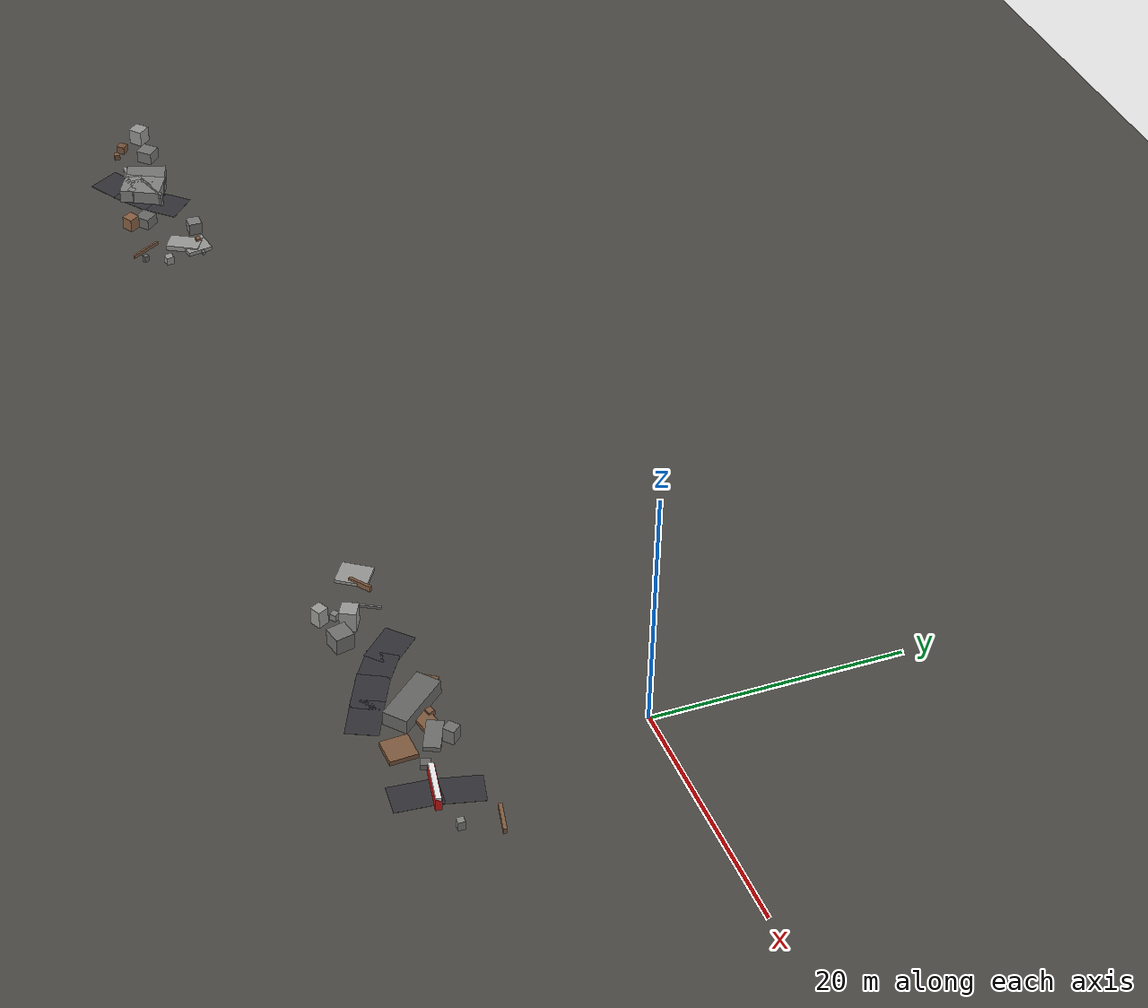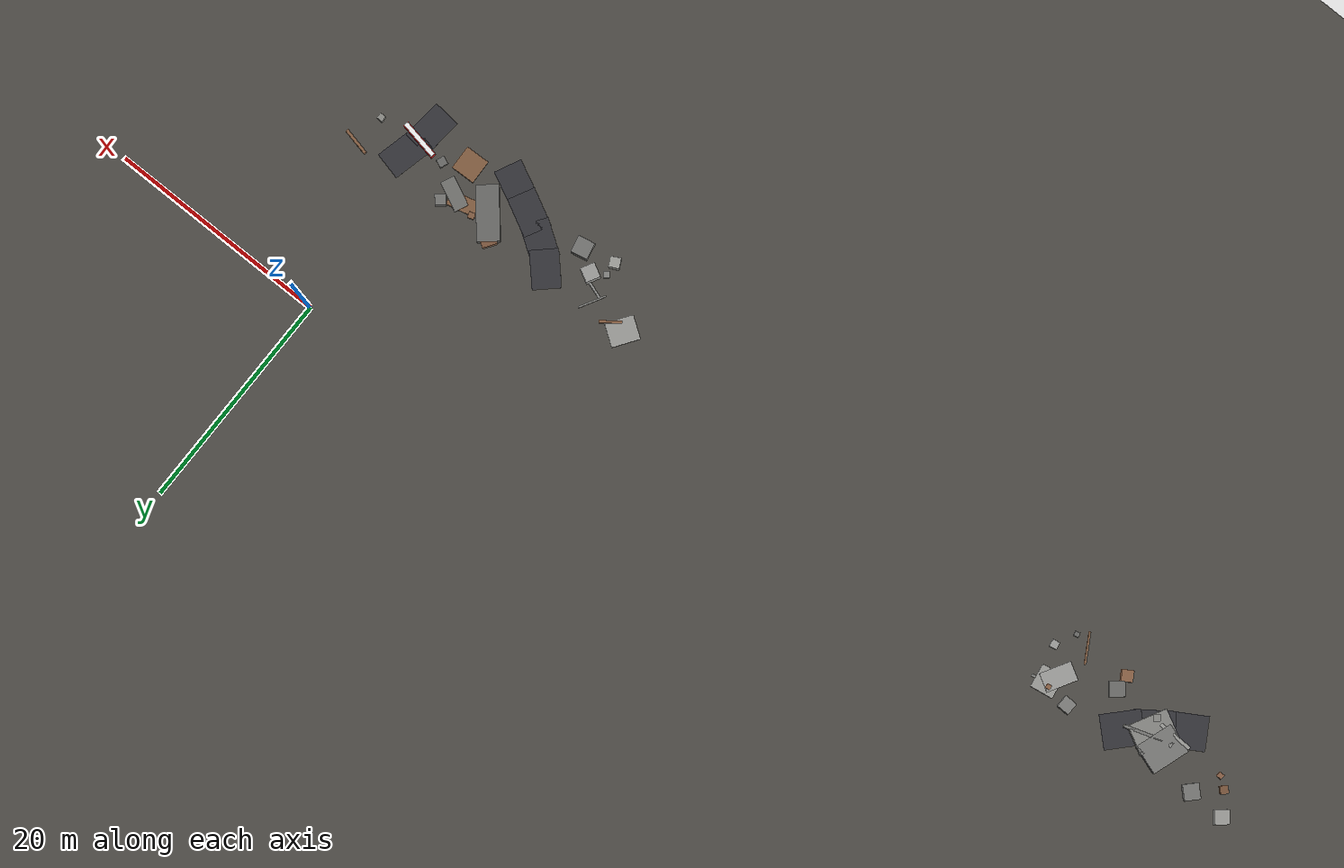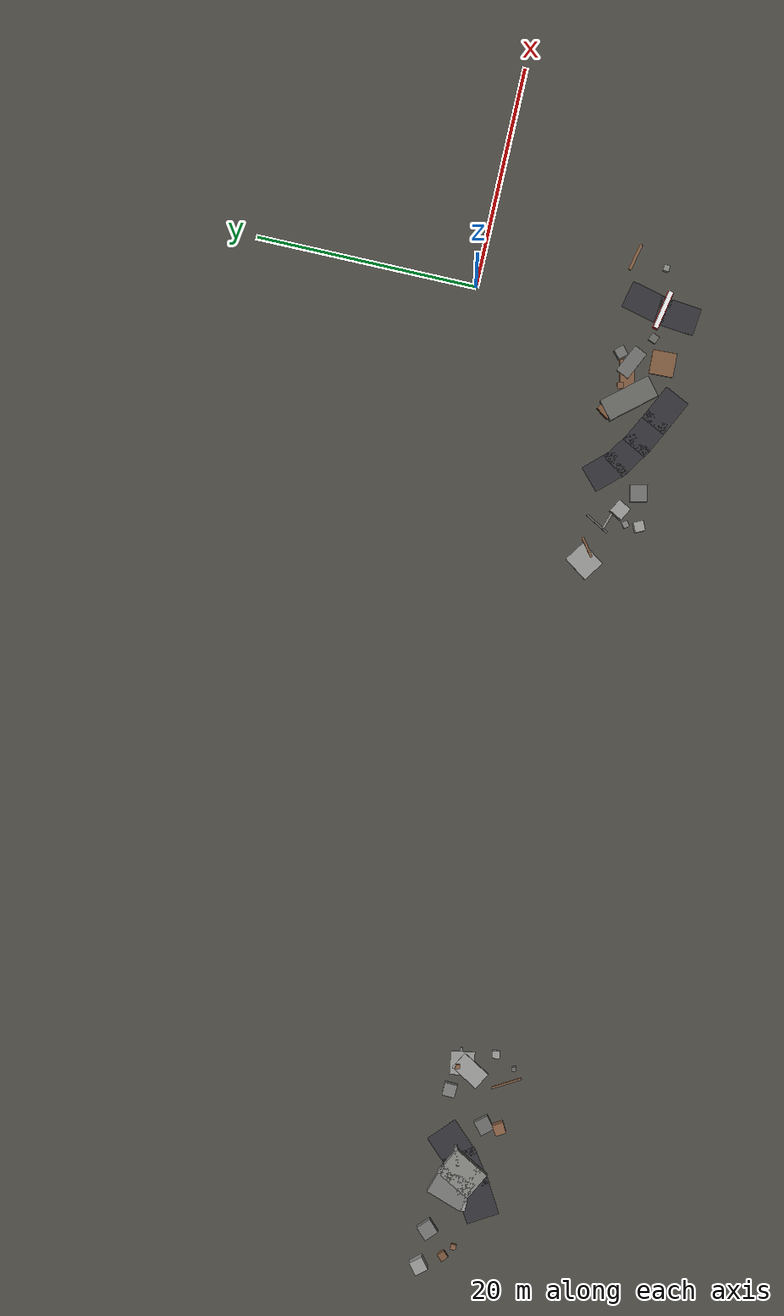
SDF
<sdf version="1.6">
 <world name="navitas_arena">
  <model name="ground_plane">
   <static>true</static>
   <link name="link">
    <collision name="collision">
     <geometry><plane><normal>0 0 1</normal><size>400 400</size></plane></geometry>
     <surface><friction><ode><mu>0.800</mu><mu2>0.800</mu2></ode></friction></surface>
    </collision>
    <visual name="visual">
     <cast_shadows>false</cast_shadows>
     <geometry><plane><normal>0 0 1</normal><size>400 400</size></plane></geometry>
     <material><ambient>0.300 0.290 0.270 1</ambient><diffuse>0.300 0.290 0.270 1</diffuse></material>
    </visual>
   </link>
  </model>
  <model name="road_kolay_3_3">
   <static>true</static>
   <pose>-79.477 -18.153 0.040 0 0 0.534</pose>
   <link name="link">
    <collision name="col"><geometry><box><size>3.588 3.000 0.020</size></box></geometry></collision>
    <visual name="vis">
     <geometry><box><size>3.588 3.000 0.020</size></box></geometry>
     <material><ambient>0.20 0.20 0.22 1</ambient><diffuse>0.20 0.20 0.22 1</diffuse></material>
    </visual>
   </link>
  </model>
  <model name="road_kolay_3_4">
   <static>true</static>
   <pose>-77.232 -16.688 0.040 0 0 0.623</pose>
   <link name="link">
    <collision name="col"><geometry><box><size>3.579 3.000 0.020</size></box></geometry></collision>
    <visual name="vis">
     <geometry><box><size>3.579 3.000 0.020</size></box></geometry>
     <material><ambient>0.20 0.20 0.22 1</ambient><diffuse>0.20 0.20 0.22 1</diffuse></material>
    </visual>
   </link>
  </model>
  <model name="road_kolay_3_5">
   <static>true</static>
   <pose>-75.233 -14.942 0.040 0 0 0.813</pose>
   <link name="link">
    <collision name="col"><geometry><box><size>3.554 3.000 0.020</size></box></geometry></collision>
    <visual name="vis">
     <geometry><box><size>3.554 3.000 0.020</size></box></geometry>
     <material><ambient>0.20 0.20 0.22 1</ambient><diffuse>0.20 0.20 0.22 1</diffuse></material>
    </visual>
   </link>
  </model>
  <model name="blk_kolay_3_0_0">
   <static>true</static>
   <pose>-77.322 -16.333 0.600 0 0 1.084</pose>
   <link name="link">
    <collision name="col"><geometry><box><size>3.534 2.679 1.200</size></box></geometry></collision>
    <visual name="vis">
     <geometry><box><size>3.534 2.679 1.200</size></box></geometry>
     <material><ambient>0.52 0.52 0.51 1</ambient><diffuse>0.52 0.52 0.51 1</diffuse></material>
    </visual>
   </link>
  </model>
  <model name="blk_kolay_3_0_1">
   <static>true</static>
   <pose>-78.757 -15.671 0.600 0 0 1.250</pose>
   <link name="link">
    <collision name="col"><geometry><box><size>3.412 2.728 1.200</size></box></geometry></collision>
    <visual name="vis">
     <geometry><box><size>3.412 2.728 1.200</size></box></geometry>
     <material><ambient>0.47 0.47 0.46 1</ambient><diffuse>0.47 0.47 0.46 1</diffuse></material>
    </visual>
   </link>
  </model>
  <model name="blk_kolay_3_0_2">
   <static>true</static>
   <pose>-78.960 -17.161 0.600 0 0 3.112</pose>
   <link name="link">
    <collision name="col"><geometry><box><size>3.135 0.305 1.200</size></box></geometry></collision>
    <visual name="vis">
     <geometry><box><size>3.135 0.305 1.200</size></box></geometry>
     <material><ambient>0.60 0.60 0.59 1</ambient><diffuse>0.60 0.60 0.59 1</diffuse></material>
    </visual>
   </link>
  </model>
  <model name="blk_kolay_3_0_3">
   <static>true</static>
   <pose>-76.801 -17.429 0.600 0 0 2.296</pose>
   <link name="link">
    <collision name="col"><geometry><box><size>0.618 0.618 1.200</size></box></geometry></collision>
    <visual name="vis">
     <geometry><box><size>0.618 0.618 1.200</size></box></geometry>
     <material><ambient>0.52 0.52 0.51 1</ambient><diffuse>0.52 0.52 0.51 1</diffuse></material>
    </visual>
   </link>
  </model>
  <model name="blk_kolay_3_0_4">
   <static>true</static>
   <pose>-76.710 -15.750 0.600 0 0 0.316</pose>
   <link name="link">
    <collision name="col"><geometry><box><size>3.436 0.256 1.200</size></box></geometry></collision>
    <visual name="vis">
     <geometry><box><size>3.436 0.256 1.200</size></box></geometry>
     <material><ambient>0.46 0.46 0.45 1</ambient><diffuse>0.46 0.46 0.45 1</diffuse></material>
    </visual>
   </link>
  </model>
  <model name="blk_kolay_3_0_5">
   <static>true</static>
   <pose>-78.673 -16.698 0.600 0 0 1.601</pose>
   <link name="link">
    <collision name="col"><geometry><box><size>1.063 1.063 1.200</size></box></geometry></collision>
    <visual name="vis">
     <geometry><box><size>1.063 1.063 1.200</size></box></geometry>
     <material><ambient>0.54 0.54 0.53 1</ambient><diffuse>0.54 0.54 0.53 1</diffuse></material>
    </visual>
   </link>
  </model>
  <model name="deb_kolay_54">
   <static>true</static>
   <pose>-72.738 -17.276 0.489 0 0 0.701</pose>
   <link name="link">
    <collision name="col"><geometry><box><size>1.338 1.338 0.978</size></box></geometry></collision>
    <visual name="vis">
     <geometry><box><size>1.338 1.338 0.978</size></box></geometry>
     <material><ambient>0.42 0.42 0.41 1</ambient><diffuse>0.42 0.42 0.41 1</diffuse></material>
    </visual>
   </link>
  </model>
  <model name="deb_kolay_66">
   <static>true</static>
   <pose>-68.180 -13.838 0.339 0 0 1.690</pose>
   <link name="link">
    <collision name="col"><geometry><box><size>0.416 0.416 0.678</size></box></geometry></collision>
    <visual name="vis">
     <geometry><box><size>0.416 0.416 0.678</size></box></geometry>
     <material><ambient>0.54 0.38 0.27 1</ambient><diffuse>0.54 0.38 0.27 1</diffuse></material>
    </visual>
   </link>
  </model>
  <model name="deb_kolay_69">
   <static>true</static>
   <pose>-70.304 -13.588 0.540 0 0 1.545</pose>
   <link name="link">
    <collision name="col"><geometry><box><size>1.140 1.140 1.080</size></box></geometry></collision>
    <visual name="vis">
     <geometry><box><size>1.140 1.140 1.080</size></box></geometry>
     <material><ambient>0.49 0.49 0.48 1</ambient><diffuse>0.49 0.49 0.48 1</diffuse></material>
    </visual>
   </link>
  </model>
  <model name="deb_kolay_75">
   <static>true</static>
   <pose>-68.330 -15.027 0.223 0 0 1.046</pose>
   <link name="link">
    <collision name="col"><geometry><box><size>2.820 1.694 0.447</size></box></geometry></collision>
    <visual name="vis">
     <geometry><box><size>2.820 1.694 0.447</size></box></geometry>
     <material><ambient>0.61 0.61 0.60 1</ambient><diffuse>0.61 0.61 0.60 1</diffuse></material>
    </visual>
   </link>
  </model>
  <model name="deb_kolay_82">
   <static>true</static>
   <pose>-86.141 -14.345 0.690 0 0 2.273</pose>
   <link name="link">
    <collision name="col"><geometry><box><size>1.243 1.243 1.379</size></box></geometry></collision>
    <visual name="vis">
     <geometry><box><size>1.243 1.243 1.379</size></box></geometry>
     <material><ambient>0.60 0.60 0.59 1</ambient><diffuse>0.60 0.60 0.59 1</diffuse></material>
    </visual>
   </link>
  </model>
  <model name="deb_kolay_85">
   <static>true</static>
   <pose>-66.373 -16.935 0.340 0 0 0.152</pose>
   <link name="link">
    <collision name="col"><geometry><box><size>0.658 0.658 0.680</size></box></geometry></collision>
    <visual name="vis">
     <geometry><box><size>0.658 0.658 0.680</size></box></geometry>
     <material><ambient>0.61 0.61 0.60 1</ambient><diffuse>0.61 0.61 0.60 1</diffuse></material>
    </visual>
   </link>
  </model>
  <model name="deb_kolay_107">
   <static>true</static>
   <pose>-67.306 -18.773 0.277 0 0 1.853</pose>
   <link name="link">
    <collision name="col"><geometry><box><size>0.419 0.419 0.553</size></box></geometry></collision>
    <visual name="vis">
     <geometry><box><size>0.419 0.419 0.553</size></box></geometry>
     <material><ambient>0.41 0.41 0.40 1</ambient><diffuse>0.41 0.41 0.40 1</diffuse></material>
    </visual>
   </link>
  </model>
  <model name="deb_kolay_114">
   <static>true</static>
   <pose>-83.988 -17.023 0.240 0 0 3.086</pose>
   <link name="link">
    <collision name="col"><geometry><box><size>0.470 0.470 0.480</size></box></geometry></collision>
    <visual name="vis">
     <geometry><box><size>0.470 0.470 0.480</size></box></geometry>
     <material><ambient>0.53 0.37 0.27 1</ambient><diffuse>0.53 0.37 0.27 1</diffuse></material>
    </visual>
   </link>
  </model>
  <model name="deb_kolay_123">
   <static>true</static>
   <pose>-72.713 -18.647 0.576 0 0 0.532</pose>
   <link name="link">
    <collision name="col"><geometry><box><size>0.994 0.994 1.152</size></box></geometry></collision>
    <visual name="vis">
     <geometry><box><size>0.994 0.994 1.152</size></box></geometry>
     <material><ambient>0.54 0.38 0.27 1</ambient><diffuse>0.54 0.38 0.27 1</diffuse></material>
    </visual>
   </link>
  </model>
  <model name="deb_kolay_165">
   <static>true</static>
   <pose>-67.832 -14.168 0.167 0 0 0.154</pose>
   <link name="link">
    <collision name="col"><geometry><box><size>2.088 2.150 0.334</size></box></geometry></collision>
    <visual name="vis">
     <geometry><box><size>2.088 2.150 0.334</size></box></geometry>
     <material><ambient>0.60 0.60 0.59 1</ambient><diffuse>0.60 0.60 0.59 1</diffuse></material>
    </visual>
   </link>
  </model>
  <model name="deb_kolay_182">
   <static>true</static>
   <pose>-84.940 -16.276 0.350 0 0 2.392</pose>
   <link name="link">
    <collision name="col"><geometry><box><size>0.706 0.706 0.699</size></box></geometry></collision>
    <visual name="vis">
     <geometry><box><size>0.706 0.706 0.699</size></box></geometry>
     <material><ambient>0.47 0.33 0.23 1</ambient><diffuse>0.47 0.33 0.23 1</diffuse></material>
    </visual>
   </link>
  </model>
  <model name="deb_kolay_187">
   <static>true</static>
   <pose>-68.737 -18.411 0.146 0 0 2.092</pose>
   <link name="link">
    <collision name="col"><geometry><box><size>2.803 0.169 0.292</size></box></geometry></collision>
    <visual name="vis">
     <geometry><box><size>2.803 0.169 0.292</size></box></geometry>
     <material><ambient>0.49 0.35 0.25 1</ambient><diffuse>0.49 0.35 0.25 1</diffuse></material>
    </visual>
   </link>
  </model>
  <model name="deb_kolay_189">
   <static>true</static>
   <pose>-67.262 -13.936 0.123 0 0 0.194</pose>
   <link name="link">
    <collision name="col"><geometry><box><size>1.586 0.236 0.247</size></box></geometry></collision>
    <visual name="vis">
     <geometry><box><size>1.586 0.236 0.247</size></box></geometry>
     <material><ambient>0.49 0.49 0.48 1</ambient><diffuse>0.49 0.49 0.48 1</diffuse></material>
    </visual>
   </link>
  </model>
  <model name="deb_kolay_199">
   <static>true</static>
   <pose>-82.885 -14.416 0.545 0 0 0.805</pose>
   <link name="link">
    <collision name="col"><geometry><box><size>1.381 1.381 1.091</size></box></geometry></collision>
    <visual name="vis">
     <geometry><box><size>1.381 1.381 1.091</size></box></geometry>
     <material><ambient>0.46 0.46 0.45 1</ambient><diffuse>0.46 0.46 0.45 1</diffuse></material>
    </visual>
   </link>
  </model>
  <model name="road_orta_1_3">
   <static>true</static>
   <pose>-6.995 -18.930 0.040 0 0 2.689</pose>
   <link name="link">
    <collision name="col"><geometry><box><size>3.504 2.500 0.020</size></box></geometry></collision>
    <visual name="vis">
     <geometry><box><size>3.504 2.500 0.020</size></box></geometry>
     <material><ambient>0.20 0.20 0.22 1</ambient><diffuse>0.20 0.20 0.22 1</diffuse></material>
    </visual>
   </link>
  </model>
  <model name="road_orta_1_4">
   <static>true</static>
   <pose>-9.326 -17.758 0.040 0 0 2.663</pose>
   <link name="link">
    <collision name="col"><geometry><box><size>3.514 2.500 0.020</size></box></geometry></collision>
    <visual name="vis">
     <geometry><box><size>3.514 2.500 0.020</size></box></geometry>
     <material><ambient>0.20 0.20 0.22 1</ambient><diffuse>0.20 0.20 0.22 1</diffuse></material>
    </visual>
   </link>
  </model>
  <model name="road_orta_1_5">
   <static>true</static>
   <pose>-11.507 -16.469 0.040 0 0 2.549</pose>
   <link name="link">
    <collision name="col"><geometry><box><size>3.359 2.500 0.020</size></box></geometry></collision>
    <visual name="vis">
     <geometry><box><size>3.359 2.500 0.020</size></box></geometry>
     <material><ambient>0.20 0.20 0.22 1</ambient><diffuse>0.20 0.20 0.22 1</diffuse></material>
    </visual>
   </link>
  </model>
  <model name="road_orta_1_6">
   <static>true</static>
   <pose>-13.371 -14.880 0.040 0 0 2.323</pose>
   <link name="link">
    <collision name="col"><geometry><box><size>3.372 2.500 0.020</size></box></geometry></collision>
    <visual name="vis">
     <geometry><box><size>3.372 2.500 0.020</size></box></geometry>
     <material><ambient>0.20 0.20 0.22 1</ambient><diffuse>0.20 0.20 0.22 1</diffuse></material>
    </visual>
   </link>
  </model>
  <model name="road_orta_2_1">
   <static>true</static>
   <pose>1.503 -18.111 0.040 0 0 1.479</pose>
   <link name="link">
    <collision name="col"><geometry><box><size>3.689 2.500 0.020</size></box></geometry></collision>
    <visual name="vis">
     <geometry><box><size>3.689 2.500 0.020</size></box></geometry>
     <material><ambient>0.20 0.20 0.22 1</ambient><diffuse>0.20 0.20 0.22 1</diffuse></material>
    </visual>
   </link>
  </model>
  <model name="road_orta_2_2">
   <static>true</static>
   <pose>1.988 -15.241 0.040 0 0 1.334</pose>
   <link name="link">
    <collision name="col"><geometry><box><size>3.948 2.500 0.020</size></box></geometry></collision>
    <visual name="vis">
     <geometry><box><size>3.948 2.500 0.020</size></box></geometry>
     <material><ambient>0.20 0.20 0.22 1</ambient><diffuse>0.20 0.20 0.22 1</diffuse></material>
    </visual>
   </link>
  </model>
  <model name="bar_orta_2">
   <static>true</static>
   <pose>1.630 -16.722 0.500 0 0 2.953</pose>
   <link name="link">
    <collision name="col"><geometry><box><size>3.500 0.500 1.000</size></box></geometry></collision>
    <visual name="vis">
     <geometry><box><size>3.500 0.500 1.000</size></box></geometry>
     <material><ambient>0.85 0.10 0.10 1</ambient><diffuse>0.85 0.10 0.10 1</diffuse></material>
    </visual>
   </link>
  </model>
  <model name="bar_orta_2b">
   <static>true</static>
   <pose>1.630 -16.722 1.000 0 0 2.953</pose>
   <link name="link">
    <collision name="col"><geometry><box><size>3.500 0.400 0.300</size></box></geometry></collision>
    <visual name="vis">
     <geometry><box><size>3.500 0.400 0.300</size></box></geometry>
     <material><ambient>0.95 0.95 0.95 1</ambient><diffuse>0.95 0.95 0.95 1</diffuse></material>
    </visual>
   </link>
  </model>
  <model name="deb_orta_20">
   <static>true</static>
   <pose>-4.783 -14.917 0.143 0 0 0.233</pose>
   <link name="link">
    <collision name="col"><geometry><box><size>3.106 1.322 0.287</size></box></geometry></collision>
    <visual name="vis">
     <geometry><box><size>3.106 1.322 0.287</size></box></geometry>
     <material><ambient>0.51 0.36 0.25 1</ambient><diffuse>0.51 0.36 0.25 1</diffuse></material>
    </visual>
   </link>
  </model>
  <model name="deb_orta_23">
   <static>true</static>
   <pose>5.376 -16.192 0.377 0 0 3.087</pose>
   <link name="link">
    <collision name="col"><geometry><box><size>0.537 0.537 0.753</size></box></geometry></collision>
    <visual name="vis">
     <geometry><box><size>0.537 0.537 0.753</size></box></geometry>
     <material><ambient>0.54 0.54 0.52 1</ambient><diffuse>0.54 0.54 0.52 1</diffuse></material>
    </visual>
   </link>
  </model>
  <model name="deb_orta_33">
   <static>true</static>
   <pose>5.765 -13.292 0.232 0 0 2.924</pose>
   <link name="link">
    <collision name="col"><geometry><box><size>2.460 0.267 0.464</size></box></geometry></collision>
    <visual name="vis">
     <geometry><box><size>2.460 0.267 0.464</size></box></geometry>
     <material><ambient>0.52 0.37 0.26 1</ambient><diffuse>0.52 0.37 0.26 1</diffuse></material>
    </visual>
   </link>
  </model>
  <model name="deb_orta_36">
   <static>true</static>
   <pose>-8.025 -13.827 0.489 0 0 0.980</pose>
   <link name="link">
    <collision name="col"><geometry><box><size>1.343 1.343 0.978</size></box></geometry></collision>
    <visual name="vis">
     <geometry><box><size>1.343 1.343 0.978</size></box></geometry>
     <material><ambient>0.49 0.34 0.24 1</ambient><diffuse>0.49 0.34 0.24 1</diffuse></material>
    </visual>
   </link>
  </model>
  <model name="deb_orta_42">
   <static>true</static>
   <pose>-17.286 -16.214 0.201 0 0 2.821</pose>
   <link name="link">
    <collision name="col"><geometry><box><size>2.535 0.201 0.401</size></box></geometry></collision>
    <visual name="vis">
     <geometry><box><size>2.535 0.201 0.401</size></box></geometry>
     <material><ambient>0.55 0.55 0.54 1</ambient><diffuse>0.55 0.55 0.54 1</diffuse></material>
    </visual>
   </link>
  </model>
  <model name="deb_orta_65">
   <static>true</static>
   <pose>-17.677 -18.879 0.728 0 0 0.459</pose>
   <link name="link">
    <collision name="col"><geometry><box><size>0.912 0.912 1.456</size></box></geometry></collision>
    <visual name="vis">
     <geometry><box><size>0.912 0.912 1.456</size></box></geometry>
     <material><ambient>0.62 0.62 0.60 1</ambient><diffuse>0.62 0.62 0.60 1</diffuse></material>
    </visual>
   </link>
  </model>
  <model name="deb_orta_85">
   <static>true</static>
   <pose>-21.731 -14.836 0.130 0 0 0.966</pose>
   <link name="link">
    <collision name="col"><geometry><box><size>2.539 2.137 0.260</size></box></geometry></collision>
    <visual name="vis">
     <geometry><box><size>2.539 2.137 0.260</size></box></geometry>
     <material><ambient>0.60 0.60 0.59 1</ambient><diffuse>0.60 0.60 0.59 1</diffuse></material>
    </visual>
   </link>
  </model>
  <model name="deb_orta_107">
   <static>true</static>
   <pose>-5.721 -14.500 0.232 0 0 1.864</pose>
   <link name="link">
    <collision name="col"><geometry><box><size>0.543 0.543 0.464</size></box></geometry></collision>
    <visual name="vis">
     <geometry><box><size>0.543 0.543 0.464</size></box></geometry>
     <material><ambient>0.51 0.36 0.26 1</ambient><diffuse>0.51 0.36 0.26 1</diffuse></material>
    </visual>
   </link>
  </model>
  <model name="deb_orta_114">
   <static>true</static>
   <pose>-20.447 -14.803 0.239 0 0 0.641</pose>
   <link name="link">
    <collision name="col"><geometry><box><size>1.961 0.211 0.478</size></box></geometry></collision>
    <visual name="vis">
     <geometry><box><size>1.961 0.211 0.478</size></box></geometry>
     <material><ambient>0.53 0.37 0.26 1</ambient><diffuse>0.53 0.37 0.26 1</diffuse></material>
    </visual>
   </link>
  </model>
  <model name="deb_orta_178">
   <static>true</static>
   <pose>-0.950 -16.485 0.220 0 0 1.195</pose>
   <link name="link">
    <collision name="col"><geometry><box><size>0.746 0.746 0.441</size></box></geometry></collision>
    <visual name="vis">
     <geometry><box><size>0.746 0.746 0.441</size></box></geometry>
     <material><ambient>0.41 0.41 0.40 1</ambient><diffuse>0.41 0.41 0.40 1</diffuse></material>
    </visual>
   </link>
  </model>
  <model name="deb_orta_186">
   <static>true</static>
   <pose>-17.714 -17.694 0.278 0 0 2.220</pose>
   <link name="link">
    <collision name="col"><geometry><box><size>0.552 0.552 0.556</size></box></geometry></collision>
    <visual name="vis">
     <geometry><box><size>0.552 0.552 0.556</size></box></geometry>
     <material><ambient>0.51 0.51 0.50 1</ambient><diffuse>0.51 0.51 0.50 1</diffuse></material>
    </visual>
   </link>
  </model>
  <model name="deb_orta_188">
   <static>true</static>
   <pose>-7.825 -14.906 0.232 0 0 1.069</pose>
   <link name="link">
    <collision name="col"><geometry><box><size>0.684 0.684 0.463</size></box></geometry></collision>
    <visual name="vis">
     <geometry><box><size>0.684 0.684 0.463</size></box></geometry>
     <material><ambient>0.50 0.35 0.25 1</ambient><diffuse>0.50 0.35 0.25 1</diffuse></material>
    </visual>
   </link>
  </model>
  <model name="deb_orta_216">
   <static>true</static>
   <pose>-16.624 -16.911 0.855 0 0 1.075</pose>
   <link name="link">
    <collision name="col"><geometry><box><size>1.294 1.294 1.709</size></box></geometry></collision>
    <visual name="vis">
     <geometry><box><size>1.294 1.294 1.709</size></box></geometry>
     <material><ambient>0.61 0.61 0.60 1</ambient><diffuse>0.61 0.61 0.60 1</diffuse></material>
    </visual>
   </link>
  </model>
  <model name="deb_orta_217">
   <static>true</static>
   <pose>-2.952 -17.779 0.190 0 0 1.609</pose>
   <link name="link">
    <collision name="col"><geometry><box><size>2.176 2.163 0.381</size></box></geometry></collision>
    <visual name="vis">
     <geometry><box><size>2.176 2.163 0.381</size></box></geometry>
     <material><ambient>0.51 0.36 0.25 1</ambient><diffuse>0.51 0.36 0.25 1</diffuse></material>
    </visual>
   </link>
  </model>
  <model name="deb_orta_234">
   <static>true</static>
   <pose>-3.453 -15.023 0.188 0 0 2.702</pose>
   <link name="link">
    <collision name="col"><geometry><box><size>2.763 1.284 0.375</size></box></geometry></collision>
    <visual name="vis">
     <geometry><box><size>2.763 1.284 0.375</size></box></geometry>
     <material><ambient>0.44 0.44 0.43 1</ambient><diffuse>0.44 0.44 0.43 1</diffuse></material>
    </visual>
   </link>
  </model>
  <model name="deb_orta_251">
   <static>true</static>
   <pose>-18.174 -15.191 0.096 0 0 1.065</pose>
   <link name="link">
    <collision name="col"><geometry><box><size>2.489 0.157 0.192</size></box></geometry></collision>
    <visual name="vis">
     <geometry><box><size>2.489 0.157 0.192</size></box></geometry>
     <material><ambient>0.46 0.46 0.45 1</ambient><diffuse>0.46 0.46 0.45 1</diffuse></material>
    </visual>
   </link>
  </model>
  <model name="deb_orta_257">
   <static>true</static>
   <pose>-2.899 -13.882 0.600 0 0 0.706</pose>
   <link name="link">
    <collision name="col"><geometry><box><size>0.937 0.937 1.200</size></box></geometry></collision>
    <visual name="vis">
     <geometry><box><size>0.937 0.937 1.200</size></box></geometry>
     <material><ambient>0.45 0.45 0.44 1</ambient><diffuse>0.45 0.45 0.44 1</diffuse></material>
    </visual>
   </link>
  </model>
  <model name="chic_orta_1">
   <static>true</static>
   <pose>-6.729 -15.475 0.600 0 0 2.272</pose>
   <link name="link">
    <collision name="col"><geometry><box><size>4.804 1.994 1.200</size></box></geometry></collision>
    <visual name="vis">
     <geometry><box><size>4.804 1.994 1.200</size></box></geometry>
     <material><ambient>0.41 0.41 0.40 1</ambient><diffuse>0.41 0.41 0.40 1</diffuse></material>
    </visual>
   </link>
  </model>
  <model name="chic_orta_2">
   <static>true</static>
   <pose>-14.782 -18.184 0.690 0 0 1.770</pose>
   <link name="link">
    <collision name="col"><geometry><box><size>1.517 1.517 1.380</size></box></geometry></collision>
    <visual name="vis">
     <geometry><box><size>1.517 1.517 1.380</size></box></geometry>
     <material><ambient>0.45 0.45 0.44 1</ambient><diffuse>0.45 0.45 0.44 1</diffuse></material>
    </visual>
   </link>
  </model>
 </world>
</sdf>
